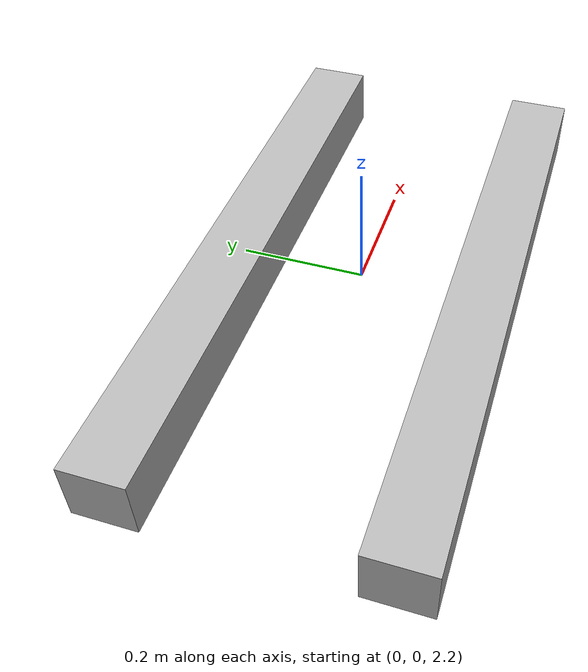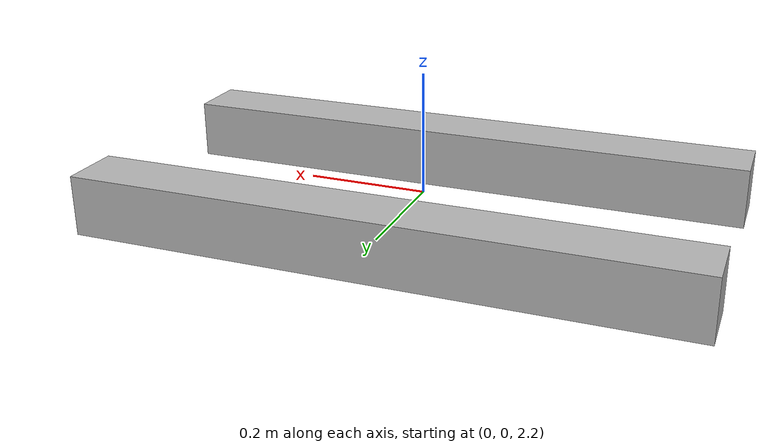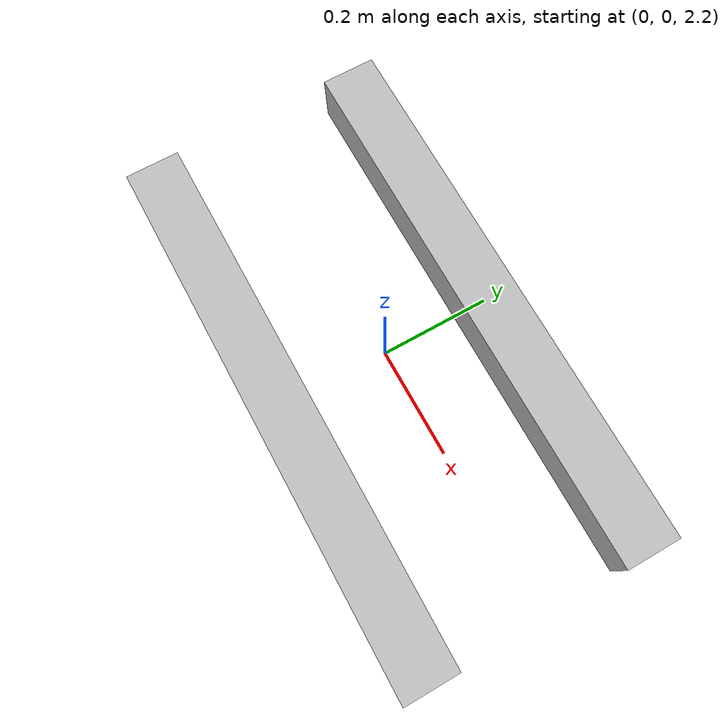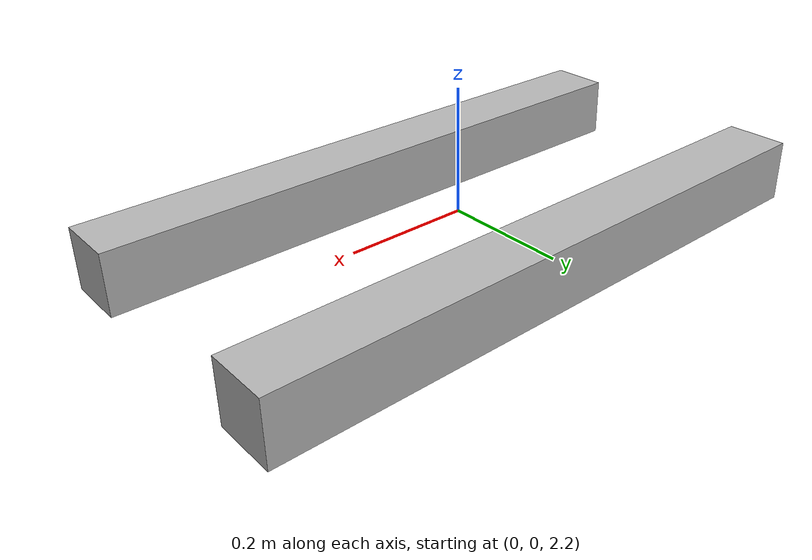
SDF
<?xml version="1.0"?>
<sdf version="1.6"><world name="default">
  <include><uri>model://sun</uri></include>
  <include><uri>model://ground_plane</uri></include>
  <physics name="default_physics" type="ode">
    <ode>
      <solver><type>quick</type><iters>200</iters><sor>1.0</sor><use_dynamic_moi_rescaling>0</use_dynamic_moi_rescaling></solver>
      <constraints><cfm>0</cfm><erp>0.2</erp><contact_max_correcting_vel>100</contact_max_correcting_vel><contact_surface_layer>0.001</contact_surface_layer></constraints>
    </ode>
    <max_step_size>0.004</max_step_size><real_time_factor>1</real_time_factor><real_time_update_rate>250</real_time_update_rate>
  </physics>
  <gravity>0 0 -9.8066</gravity>
  <magnetic_field>6.0e-6 2.3e-5 -4.2e-5</magnetic_field>
  <!-- Takeoff support for the drone above the suspended rigid rod. -->
  <model name="takeoff_stand"><static>true</static><pose>0 0 2.2 0 0 0</pose>
    <link name="left_rail"><pose>0 0.2 0 0 0 0</pose>
      <collision name="collision"><geometry><box><size>1 0.1 0.1</size></box></geometry></collision>
      <visual name="visual"><geometry><box><size>1 0.1 0.1</size></box></geometry></visual>
    </link>
    <link name="right_rail"><pose>0 -0.2 0 0 0 0</pose>
      <collision name="collision"><geometry><box><size>1 0.1 0.1</size></box></geometry></collision>
      <visual name="visual"><geometry><box><size>1 0.1 0.1</size></box></geometry></visual>
    </link>
  </model>
</world></sdf>
